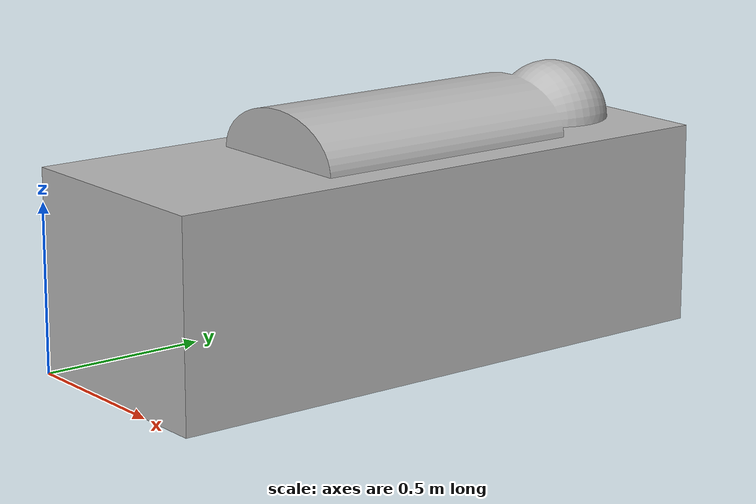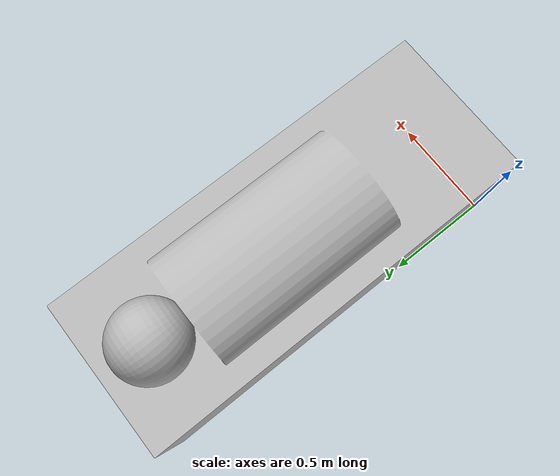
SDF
<?xml version='1.0'?>
<sdf version="1.4">
<model name="patient">
  <pose>0 0 0 0 0 0</pose>
    <link name="link">
      <inertial>
        <mass>100</mass>
        <inertia>
          <ixx>0.001</ixx>
          <ixy>0.0</ixy>
          <ixz>0.0</ixz>
          <iyy>0.001</iyy>
          <iyz>0.0</iyz>
          <izz>0.001</izz>
        </inertia>
      </inertial>
      <collision name="collision">
        <geometry>
          <mesh>
            <uri>model://patient/patient_ab1.STL</uri>
          </mesh>
        </geometry>
      </collision>
      <visual name="visual">
        <geometry>
          <mesh>
            <uri>model://patient/patient_ab1.STL</uri>
          </mesh>
        </geometry>
      </visual>
    </link>
  </model>
</sdf>
